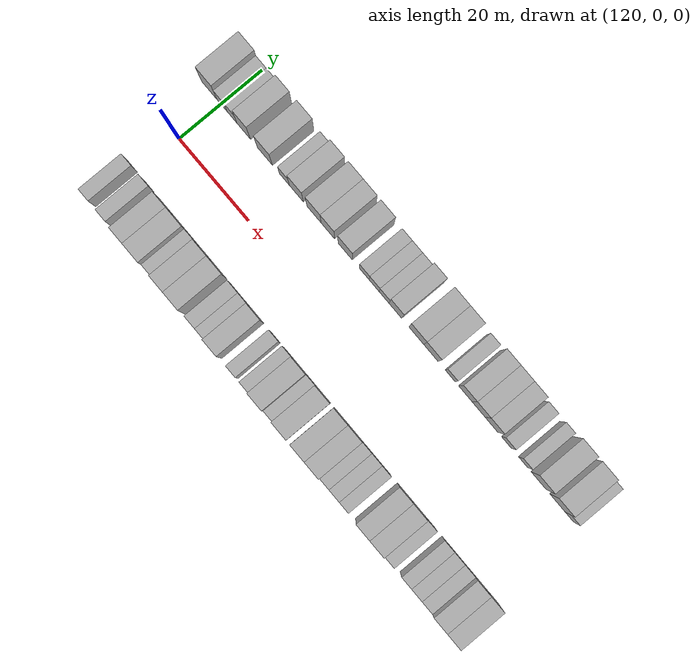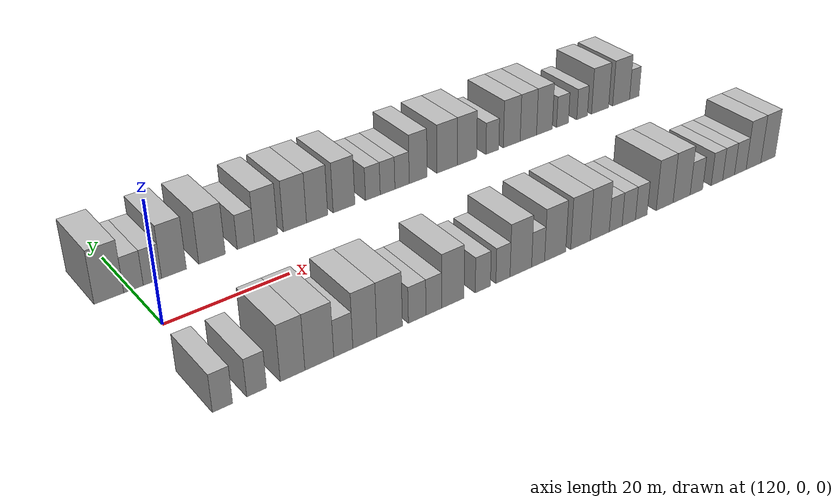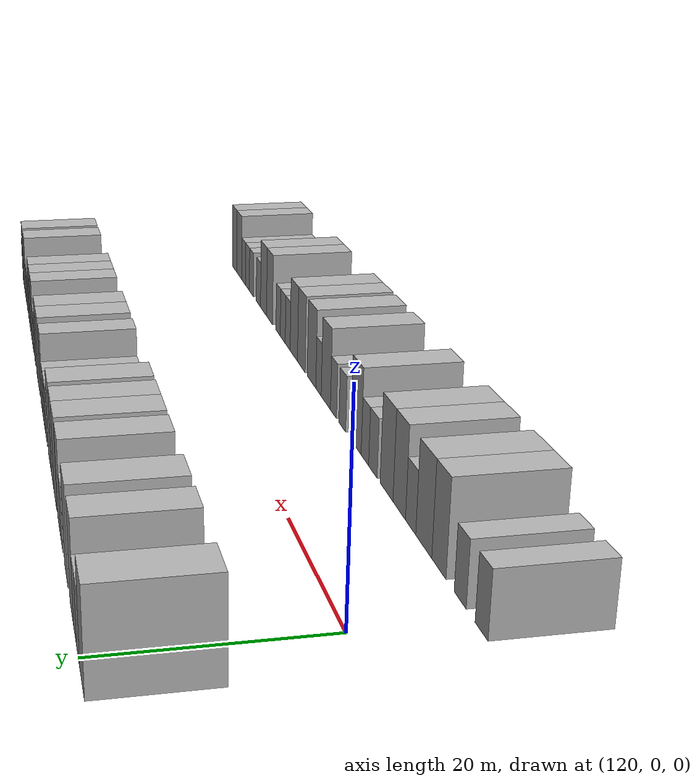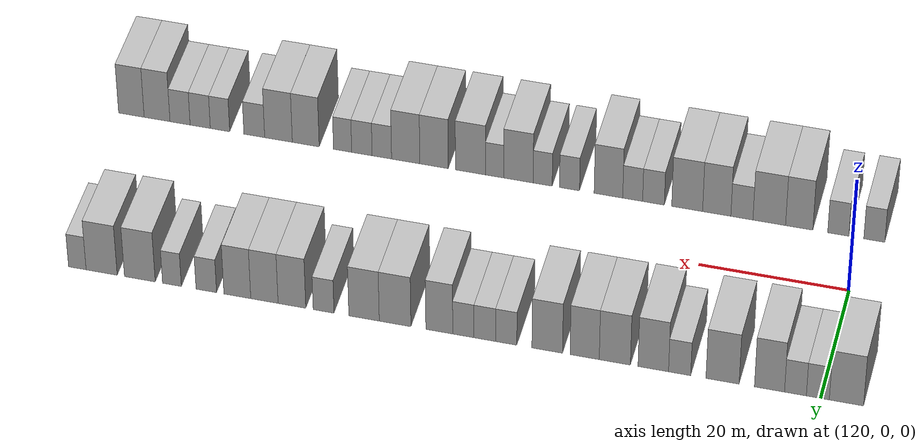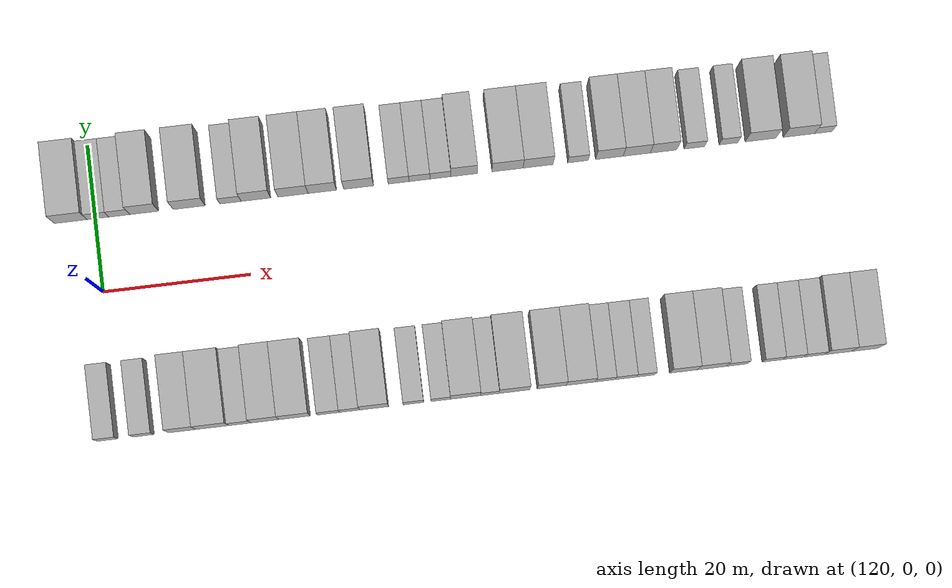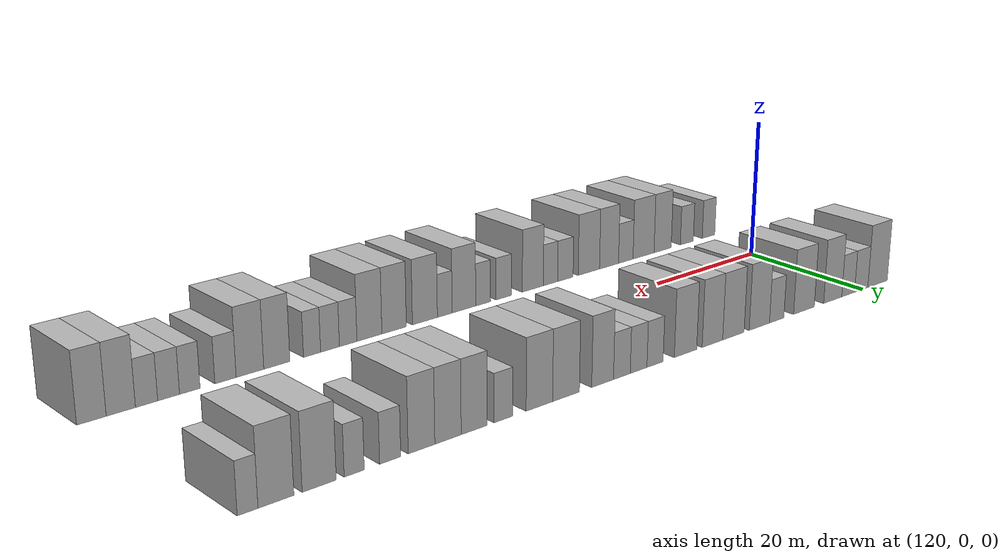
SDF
<sdf version="1.6">
 <world name="default">
  <model name="building_27">
   <static>1</static>
   <pose>116.6124 15.0000 0 0.000000 0.000000 1.570796</pose>
   <link name="link">
    <pose>0 0 4.50 0 0 0</pose>
    <collision name="collision"><geometry><box><size>10.0000 4.4511 9.0000</size></box></geometry></collision>
    <visual name="visual">
     <cast_shadows>0</cast_shadows>
     <geometry><box><size>10.0000 4.4511 9.0000</size></box></geometry>
     <material>
      <script>
       <uri>model://HANNAS_wall/materials/scripts</uri>
       <uri>model://HANNAS_wall/materials/textures</uri>
       <name>vrc/HANNAS_wall</name>
      </script>
     </material>
    </visual>
   </link>
  </model>
  <model name="building_28">
   <static>1</static>
   <pose>120.3287 15.0000 0 0.000000 0.000000 1.570796</pose>
   <link name="link">
    <pose>0 0 3.00 0 0 0</pose>
    <collision name="collision"><geometry><box><size>10.0000 2.9816 6.0000</size></box></geometry></collision>
    <visual name="visual">
     <cast_shadows>0</cast_shadows>
     <geometry><box><size>10.0000 2.9816 6.0000</size></box></geometry>
     <material>
      <script>
       <uri>model://HANNAS_wall/materials/scripts</uri>
       <uri>model://HANNAS_wall/materials/textures</uri>
       <name>vrc/HANNAS_wall</name>
      </script>
     </material>
    </visual>
   </link>
  </model>
  <model name="building_29">
   <static>1</static>
   <pose>123.2428 15.0000 0 0.000000 0.000000 1.570796</pose>
   <link name="link">
    <pose>0 0 3.00 0 0 0</pose>
    <collision name="collision"><geometry><box><size>10.0000 2.8466 6.0000</size></box></geometry></collision>
    <visual name="visual">
     <cast_shadows>0</cast_shadows>
     <geometry><box><size>10.0000 2.8466 6.0000</size></box></geometry>
     <material>
      <script>
       <uri>model://HANNAS_wall/materials/scripts</uri>
       <uri>model://HANNAS_wall/materials/textures</uri>
       <name>vrc/HANNAS_wall</name>
      </script>
     </material>
    </visual>
   </link>
  </model>
  <model name="building_30">
   <static>1</static>
   <pose>126.6300 15.0000 0 0.000000 0.000000 1.570796</pose>
   <link name="link">
    <pose>0 0 4.50 0 0 0</pose>
    <collision name="collision"><geometry><box><size>10.0000 3.9278 9.0000</size></box></geometry></collision>
    <visual name="visual">
     <cast_shadows>0</cast_shadows>
     <geometry><box><size>10.0000 3.9278 9.0000</size></box></geometry>
     <material>
      <script>
       <uri>model://HANNAS_wall/materials/scripts</uri>
       <uri>model://HANNAS_wall/materials/textures</uri>
       <name>vrc/HANNAS_wall</name>
      </script>
     </material>
    </visual>
   </link>
  </model>
  <model name="building_31">
   <static>1</static>
   <pose>132.7676 15.0000 0 0.000000 0.000000 1.570796</pose>
   <link name="link">
    <pose>0 0 4.50 0 0 0</pose>
    <collision name="collision"><geometry><box><size>10.0000 4.3474 9.0000</size></box></geometry></collision>
    <visual name="visual">
     <cast_shadows>0</cast_shadows>
     <geometry><box><size>10.0000 4.3474 9.0000</size></box></geometry>
     <material>
      <script>
       <uri>model://HANNAS_wall/materials/scripts</uri>
       <uri>model://HANNAS_wall/materials/textures</uri>
       <name>vrc/HANNAS_wall</name>
      </script>
     </material>
    </visual>
   </link>
  </model>
  <model name="building_32">
   <static>1</static>
   <pose>138.3979 15.0000 0 0.000000 0.000000 1.570796</pose>
   <link name="link">
    <pose>0 0 3.00 0 0 0</pose>
    <collision name="collision"><geometry><box><size>10.0000 2.9134 6.0000</size></box></geometry></collision>
    <visual name="visual">
     <cast_shadows>0</cast_shadows>
     <geometry><box><size>10.0000 2.9134 6.0000</size></box></geometry>
     <material>
      <script>
       <uri>model://HANNAS_wall/materials/scripts</uri>
       <uri>model://HANNAS_wall/materials/textures</uri>
       <name>vrc/HANNAS_wall</name>
      </script>
     </material>
    </visual>
   </link>
  </model>
  <model name="building_33">
   <static>1</static>
   <pose>141.8641 15.0000 0 0.000000 0.000000 1.570796</pose>
   <link name="link">
    <pose>0 0 4.50 0 0 0</pose>
    <collision name="collision"><geometry><box><size>10.0000 4.0190 9.0000</size></box></geometry></collision>
    <visual name="visual">
     <cast_shadows>0</cast_shadows>
     <geometry><box><size>10.0000 4.0190 9.0000</size></box></geometry>
     <material>
      <script>
       <uri>model://HANNAS_wall/materials/scripts</uri>
       <uri>model://HANNAS_wall/materials/textures</uri>
       <name>vrc/HANNAS_wall</name>
      </script>
     </material>
    </visual>
   </link>
  </model>
  <model name="building_34">
   <static>1</static>
   <pose>146.9313 15.0000 0 0.000000 0.000000 1.570796</pose>
   <link name="link">
    <pose>0 0 4.50 0 0 0</pose>
    <collision name="collision"><geometry><box><size>10.0000 4.1154 9.0000</size></box></geometry></collision>
    <visual name="visual">
     <cast_shadows>0</cast_shadows>
     <geometry><box><size>10.0000 4.1154 9.0000</size></box></geometry>
     <material>
      <script>
       <uri>model://HANNAS_wall/materials/scripts</uri>
       <uri>model://HANNAS_wall/materials/textures</uri>
       <name>vrc/HANNAS_wall</name>
      </script>
     </material>
    </visual>
   </link>
  </model>
  <model name="building_35">
   <static>1</static>
   <pose>150.9190 15.0000 0 0.000000 0.000000 1.570796</pose>
   <link name="link">
    <pose>0 0 4.50 0 0 0</pose>
    <collision name="collision"><geometry><box><size>10.0000 3.8599 9.0000</size></box></geometry></collision>
    <visual name="visual">
     <cast_shadows>0</cast_shadows>
     <geometry><box><size>10.0000 3.8599 9.0000</size></box></geometry>
     <material>
      <script>
       <uri>model://HANNAS_wall/materials/scripts</uri>
       <uri>model://HANNAS_wall/materials/textures</uri>
       <name>vrc/HANNAS_wall</name>
      </script>
     </material>
    </visual>
   </link>
  </model>
  <model name="building_36">
   <static>1</static>
   <pose>155.8827 15.0000 0 0.000000 0.000000 1.570796</pose>
   <link name="link">
    <pose>0 0 4.50 0 0 0</pose>
    <collision name="collision"><geometry><box><size>10.0000 4.0676 9.0000</size></box></geometry></collision>
    <visual name="visual">
     <cast_shadows>0</cast_shadows>
     <geometry><box><size>10.0000 4.0676 9.0000</size></box></geometry>
     <material>
      <script>
       <uri>model://HANNAS_wall/materials/scripts</uri>
       <uri>model://HANNAS_wall/materials/textures</uri>
       <name>vrc/HANNAS_wall</name>
      </script>
     </material>
    </visual>
   </link>
  </model>
  <model name="building_37">
   <static>1</static>
   <pose>161.3342 15.0000 0 0.000000 0.000000 1.570796</pose>
   <link name="link">
    <pose>0 0 3.00 0 0 0</pose>
    <collision name="collision"><geometry><box><size>10.0000 2.8354 6.0000</size></box></geometry></collision>
    <visual name="visual">
     <cast_shadows>0</cast_shadows>
     <geometry><box><size>10.0000 2.8354 6.0000</size></box></geometry>
     <material>
      <script>
       <uri>model://HANNAS_wall/materials/scripts</uri>
       <uri>model://HANNAS_wall/materials/textures</uri>
       <name>vrc/HANNAS_wall</name>
      </script>
     </material>
    </visual>
   </link>
  </model>
  <model name="building_38">
   <static>1</static>
   <pose>164.1872 15.0000 0 0.000000 0.000000 1.570796</pose>
   <link name="link">
    <pose>0 0 3.00 0 0 0</pose>
    <collision name="collision"><geometry><box><size>10.0000 2.8705 6.0000</size></box></geometry></collision>
    <visual name="visual">
     <cast_shadows>0</cast_shadows>
     <geometry><box><size>10.0000 2.8705 6.0000</size></box></geometry>
     <material>
      <script>
       <uri>model://HANNAS_wall/materials/scripts</uri>
       <uri>model://HANNAS_wall/materials/textures</uri>
       <name>vrc/HANNAS_wall</name>
      </script>
     </material>
    </visual>
   </link>
  </model>
  <model name="building_39">
   <static>1</static>
   <pose>167.0427 15.0000 0 0.000000 0.000000 1.570796</pose>
   <link name="link">
    <pose>0 0 3.00 0 0 0</pose>
    <collision name="collision"><geometry><box><size>10.0000 2.8405 6.0000</size></box></geometry></collision>
    <visual name="visual">
     <cast_shadows>0</cast_shadows>
     <geometry><box><size>10.0000 2.8405 6.0000</size></box></geometry>
     <material>
      <script>
       <uri>model://HANNAS_wall/materials/scripts</uri>
       <uri>model://HANNAS_wall/materials/textures</uri>
       <name>vrc/HANNAS_wall</name>
      </script>
     </material>
    </visual>
   </link>
  </model>
  <model name="building_40">
   <static>1</static>
   <pose>170.2631 15.0000 0 0.000000 0.000000 1.570796</pose>
   <link name="link">
    <pose>0 0 4.50 0 0 0</pose>
    <collision name="collision"><geometry><box><size>10.0000 3.6004 9.0000</size></box></geometry></collision>
    <visual name="visual">
     <cast_shadows>0</cast_shadows>
     <geometry><box><size>10.0000 3.6004 9.0000</size></box></geometry>
     <material>
      <script>
       <uri>model://HANNAS_wall/materials/scripts</uri>
       <uri>model://HANNAS_wall/materials/textures</uri>
       <name>vrc/HANNAS_wall</name>
      </script>
     </material>
    </visual>
   </link>
  </model>
  <model name="building_41">
   <static>1</static>
   <pose>176.1903 15.0000 0 0.000000 0.000000 1.570796</pose>
   <link name="link">
    <pose>0 0 4.50 0 0 0</pose>
    <collision name="collision"><geometry><box><size>10.0000 4.2541 9.0000</size></box></geometry></collision>
    <visual name="visual">
     <cast_shadows>0</cast_shadows>
     <geometry><box><size>10.0000 4.2541 9.0000</size></box></geometry>
     <material>
      <script>
       <uri>model://HANNAS_wall/materials/scripts</uri>
       <uri>model://HANNAS_wall/materials/textures</uri>
       <name>vrc/HANNAS_wall</name>
      </script>
     </material>
    </visual>
   </link>
  </model>
  <model name="building_42">
   <static>1</static>
   <pose>180.3640 15.0000 0 0.000000 0.000000 1.570796</pose>
   <link name="link">
    <pose>0 0 4.50 0 0 0</pose>
    <collision name="collision"><geometry><box><size>10.0000 4.0933 9.0000</size></box></geometry></collision>
    <visual name="visual">
     <cast_shadows>0</cast_shadows>
     <geometry><box><size>10.0000 4.0933 9.0000</size></box></geometry>
     <material>
      <script>
       <uri>model://HANNAS_wall/materials/scripts</uri>
       <uri>model://HANNAS_wall/materials/textures</uri>
       <name>vrc/HANNAS_wall</name>
      </script>
     </material>
    </visual>
   </link>
  </model>
  <model name="building_43">
   <static>1</static>
   <pose>185.8151 15.0000 0 0.000000 0.000000 1.570796</pose>
   <link name="link">
    <pose>0 0 3.00 0 0 0</pose>
    <collision name="collision"><geometry><box><size>10.0000 2.8088 6.0000</size></box></geometry></collision>
    <visual name="visual">
     <cast_shadows>0</cast_shadows>
     <geometry><box><size>10.0000 2.8088 6.0000</size></box></geometry>
     <material>
      <script>
       <uri>model://HANNAS_wall/materials/scripts</uri>
       <uri>model://HANNAS_wall/materials/textures</uri>
       <name>vrc/HANNAS_wall</name>
      </script>
     </material>
    </visual>
   </link>
  </model>
  <model name="building_44">
   <static>1</static>
   <pose>190.0954 15.0000 0 0.000000 0.000000 1.570796</pose>
   <link name="link">
    <pose>0 0 4.50 0 0 0</pose>
    <collision name="collision"><geometry><box><size>10.0000 3.7519 9.0000</size></box></geometry></collision>
    <visual name="visual">
     <cast_shadows>0</cast_shadows>
     <geometry><box><size>10.0000 3.7519 9.0000</size></box></geometry>
     <material>
      <script>
       <uri>model://HANNAS_wall/materials/scripts</uri>
       <uri>model://HANNAS_wall/materials/textures</uri>
       <name>vrc/HANNAS_wall</name>
      </script>
     </material>
    </visual>
   </link>
  </model>
  <model name="building_45">
   <static>1</static>
   <pose>193.8242 15.0000 0 0.000000 0.000000 1.570796</pose>
   <link name="link">
    <pose>0 0 4.50 0 0 0</pose>
    <collision name="collision"><geometry><box><size>10.0000 3.7057 9.0000</size></box></geometry></collision>
    <visual name="visual">
     <cast_shadows>0</cast_shadows>
     <geometry><box><size>10.0000 3.7057 9.0000</size></box></geometry>
     <material>
      <script>
       <uri>model://HANNAS_wall/materials/scripts</uri>
       <uri>model://HANNAS_wall/materials/textures</uri>
       <name>vrc/HANNAS_wall</name>
      </script>
     </material>
    </visual>
   </link>
  </model>
  <model name="building_46">
   <static>1</static>
   <pose>197.5007 15.0000 0 0.000000 0.000000 1.570796</pose>
   <link name="link">
    <pose>0 0 4.50 0 0 0</pose>
    <collision name="collision"><geometry><box><size>10.0000 3.6475 9.0000</size></box></geometry></collision>
    <visual name="visual">
     <cast_shadows>0</cast_shadows>
     <geometry><box><size>10.0000 3.6475 9.0000</size></box></geometry>
     <material>
      <script>
       <uri>model://HANNAS_wall/materials/scripts</uri>
       <uri>model://HANNAS_wall/materials/textures</uri>
       <name>vrc/HANNAS_wall</name>
      </script>
     </material>
    </visual>
   </link>
  </model>
  <model name="building_47">
   <static>1</static>
   <pose>201.7221 15.0000 0 0.000000 0.000000 1.570796</pose>
   <link name="link">
    <pose>0 0 3.00 0 0 0</pose>
    <collision name="collision"><geometry><box><size>10.0000 2.7953 6.0000</size></box></geometry></collision>
    <visual name="visual">
     <cast_shadows>0</cast_shadows>
     <geometry><box><size>10.0000 2.7953 6.0000</size></box></geometry>
     <material>
      <script>
       <uri>model://HANNAS_wall/materials/scripts</uri>
       <uri>model://HANNAS_wall/materials/textures</uri>
       <name>vrc/HANNAS_wall</name>
      </script>
     </material>
    </visual>
   </link>
  </model>
  <model name="building_48">
   <static>1</static>
   <pose>206.4049 15.0000 0 0.000000 0.000000 1.570796</pose>
   <link name="link">
    <pose>0 0 3.00 0 0 0</pose>
    <collision name="collision"><geometry><box><size>10.0000 2.5703 6.0000</size></box></geometry></collision>
    <visual name="visual">
     <cast_shadows>0</cast_shadows>
     <geometry><box><size>10.0000 2.5703 6.0000</size></box></geometry>
     <material>
      <script>
       <uri>model://HANNAS_wall/materials/scripts</uri>
       <uri>model://HANNAS_wall/materials/textures</uri>
       <name>vrc/HANNAS_wall</name>
      </script>
     </material>
    </visual>
   </link>
  </model>
  <model name="building_49">
   <static>1</static>
   <pose>210.7963 15.0000 0 0.000000 0.000000 1.570796</pose>
   <link name="link">
    <pose>0 0 4.50 0 0 0</pose>
    <collision name="collision"><geometry><box><size>10.0000 4.2124 9.0000</size></box></geometry></collision>
    <visual name="visual">
     <cast_shadows>0</cast_shadows>
     <geometry><box><size>10.0000 4.2124 9.0000</size></box></geometry>
     <material>
      <script>
       <uri>model://HANNAS_wall/materials/scripts</uri>
       <uri>model://HANNAS_wall/materials/textures</uri>
       <name>vrc/HANNAS_wall</name>
      </script>
     </material>
    </visual>
   </link>
  </model>
  <model name="building_50">
   <static>1</static>
   <pose>216.0364 15.0000 0 0.000000 0.000000 1.570796</pose>
   <link name="link">
    <pose>0 0 4.50 0 0 0</pose>
    <collision name="collision"><geometry><box><size>10.0000 4.2677 9.0000</size></box></geometry></collision>
    <visual name="visual">
     <cast_shadows>0</cast_shadows>
     <geometry><box><size>10.0000 4.2677 9.0000</size></box></geometry>
     <material>
      <script>
       <uri>model://HANNAS_wall/materials/scripts</uri>
       <uri>model://HANNAS_wall/materials/textures</uri>
       <name>vrc/HANNAS_wall</name>
      </script>
     </material>
    </visual>
   </link>
  </model>
  <model name="building_51">
   <static>1</static>
   <pose>219.3759 15.0000 0 0.000000 0.000000 1.570796</pose>
   <link name="link">
    <pose>0 0 3.00 0 0 0</pose>
    <collision name="collision"><geometry><box><size>10.0000 2.4113 6.0000</size></box></geometry></collision>
    <visual name="visual">
     <cast_shadows>0</cast_shadows>
     <geometry><box><size>10.0000 2.4113 6.0000</size></box></geometry>
     <material>
      <script>
       <uri>model://HANNAS_wall/materials/scripts</uri>
       <uri>model://HANNAS_wall/materials/textures</uri>
       <name>vrc/HANNAS_wall</name>
      </script>
     </material>
    </visual>
   </link>
  </model>
  <model name="building_79">
   <static>1</static>
   <pose>118.4318 -15.0000 0 0.000000 0.000000 1.570796</pose>
   <link name="link">
    <pose>0 0 3.00 0 0 0</pose>
    <collision name="collision"><geometry><box><size>10.0000 2.8278 6.0000</size></box></geometry></collision>
    <visual name="visual">
     <cast_shadows>0</cast_shadows>
     <geometry><box><size>10.0000 2.8278 6.0000</size></box></geometry>
     <material>
      <script>
       <uri>model://HANNAS_wall/materials/scripts</uri>
       <uri>model://HANNAS_wall/materials/textures</uri>
       <name>vrc/HANNAS_wall</name>
      </script>
     </material>
    </visual>
   </link>
  </model>
  <model name="building_80">
   <static>1</static>
   <pose>123.2757 -15.0000 0 0.000000 0.000000 1.570796</pose>
   <link name="link">
    <pose>0 0 3.00 0 0 0</pose>
    <collision name="collision"><geometry><box><size>10.0000 2.8600 6.0000</size></box></geometry></collision>
    <visual name="visual">
     <cast_shadows>0</cast_shadows>
     <geometry><box><size>10.0000 2.8600 6.0000</size></box></geometry>
     <material>
      <script>
       <uri>model://HANNAS_wall/materials/scripts</uri>
       <uri>model://HANNAS_wall/materials/textures</uri>
       <name>vrc/HANNAS_wall</name>
      </script>
     </material>
    </visual>
   </link>
  </model>
  <model name="building_81">
   <static>1</static>
   <pose>128.5474 -15.0000 0 0.000000 0.000000 1.570796</pose>
   <link name="link">
    <pose>0 0 4.50 0 0 0</pose>
    <collision name="collision"><geometry><box><size>10.0000 3.6834 9.0000</size></box></geometry></collision>
    <visual name="visual">
     <cast_shadows>0</cast_shadows>
     <geometry><box><size>10.0000 3.6834 9.0000</size></box></geometry>
     <material>
      <script>
       <uri>model://HANNAS_wall/materials/scripts</uri>
       <uri>model://HANNAS_wall/materials/textures</uri>
       <name>vrc/HANNAS_wall</name>
      </script>
     </material>
    </visual>
   </link>
  </model>
  <model name="building_82">
   <static>1</static>
   <pose>132.5983 -15.0000 0 0.000000 0.000000 1.570796</pose>
   <link name="link">
    <pose>0 0 4.50 0 0 0</pose>
    <collision name="collision"><geometry><box><size>10.0000 4.4184 9.0000</size></box></geometry></collision>
    <visual name="visual">
     <cast_shadows>0</cast_shadows>
     <geometry><box><size>10.0000 4.4184 9.0000</size></box></geometry>
     <material>
      <script>
       <uri>model://HANNAS_wall/materials/scripts</uri>
       <uri>model://HANNAS_wall/materials/textures</uri>
       <name>vrc/HANNAS_wall</name>
      </script>
     </material>
    </visual>
   </link>
  </model>
  <model name="building_83">
   <static>1</static>
   <pose>136.3037 -15.0000 0 0.000000 0.000000 1.570796</pose>
   <link name="link">
    <pose>0 0 3.00 0 0 0</pose>
    <collision name="collision"><geometry><box><size>10.0000 2.9924 6.0000</size></box></geometry></collision>
    <visual name="visual">
     <cast_shadows>0</cast_shadows>
     <geometry><box><size>10.0000 2.9924 6.0000</size></box></geometry>
     <material>
      <script>
       <uri>model://HANNAS_wall/materials/scripts</uri>
       <uri>model://HANNAS_wall/materials/textures</uri>
       <name>vrc/HANNAS_wall</name>
      </script>
     </material>
    </visual>
   </link>
  </model>
  <model name="building_84">
   <static>1</static>
   <pose>139.7225 -15.0000 0 0.000000 0.000000 1.570796</pose>
   <link name="link">
    <pose>0 0 4.50 0 0 0</pose>
    <collision name="collision"><geometry><box><size>10.0000 3.8451 9.0000</size></box></geometry></collision>
    <visual name="visual">
     <cast_shadows>0</cast_shadows>
     <geometry><box><size>10.0000 3.8451 9.0000</size></box></geometry>
     <material>
      <script>
       <uri>model://HANNAS_wall/materials/scripts</uri>
       <uri>model://HANNAS_wall/materials/textures</uri>
       <name>vrc/HANNAS_wall</name>
      </script>
     </material>
    </visual>
   </link>
  </model>
  <model name="building_85">
   <static>1</static>
   <pose>143.7495 -15.0000 0 0.000000 0.000000 1.570796</pose>
   <link name="link">
    <pose>0 0 4.50 0 0 0</pose>
    <collision name="collision"><geometry><box><size>10.0000 4.2091 9.0000</size></box></geometry></collision>
    <visual name="visual">
     <cast_shadows>0</cast_shadows>
     <geometry><box><size>10.0000 4.2091 9.0000</size></box></geometry>
     <material>
      <script>
       <uri>model://HANNAS_wall/materials/scripts</uri>
       <uri>model://HANNAS_wall/materials/textures</uri>
       <name>vrc/HANNAS_wall</name>
      </script>
     </material>
    </visual>
   </link>
  </model>
  <model name="building_86">
   <static>1</static>
   <pose>148.3384 -15.0000 0 0.000000 0.000000 1.570796</pose>
   <link name="link">
    <pose>0 0 3.00 0 0 0</pose>
    <collision name="collision"><geometry><box><size>10.0000 2.9688 6.0000</size></box></geometry></collision>
    <visual name="visual">
     <cast_shadows>0</cast_shadows>
     <geometry><box><size>10.0000 2.9688 6.0000</size></box></geometry>
     <material>
      <script>
       <uri>model://HANNAS_wall/materials/scripts</uri>
       <uri>model://HANNAS_wall/materials/textures</uri>
       <name>vrc/HANNAS_wall</name>
      </script>
     </material>
    </visual>
   </link>
  </model>
  <model name="building_87">
   <static>1</static>
   <pose>151.1822 -15.0000 0 0.000000 0.000000 1.570796</pose>
   <link name="link">
    <pose>0 0 3.00 0 0 0</pose>
    <collision name="collision"><geometry><box><size>10.0000 2.7187 6.0000</size></box></geometry></collision>
    <visual name="visual">
     <cast_shadows>0</cast_shadows>
     <geometry><box><size>10.0000 2.7187 6.0000</size></box></geometry>
     <material>
      <script>
       <uri>model://HANNAS_wall/materials/scripts</uri>
       <uri>model://HANNAS_wall/materials/textures</uri>
       <name>vrc/HANNAS_wall</name>
      </script>
     </material>
    </visual>
   </link>
  </model>
  <model name="building_88">
   <static>1</static>
   <pose>154.5016 -15.0000 0 0.000000 0.000000 1.570796</pose>
   <link name="link">
    <pose>0 0 4.50 0 0 0</pose>
    <collision name="collision"><geometry><box><size>10.0000 3.9201 9.0000</size></box></geometry></collision>
    <visual name="visual">
     <cast_shadows>0</cast_shadows>
     <geometry><box><size>10.0000 3.9201 9.0000</size></box></geometry>
     <material>
      <script>
       <uri>model://HANNAS_wall/materials/scripts</uri>
       <uri>model://HANNAS_wall/materials/textures</uri>
       <name>vrc/HANNAS_wall</name>
      </script>
     </material>
    </visual>
   </link>
  </model>
  <model name="building_89">
   <static>1</static>
   <pose>159.8410 -15.0000 0 0.000000 0.000000 1.570796</pose>
   <link name="link">
    <pose>0 0 3.00 0 0 0</pose>
    <collision name="collision"><geometry><box><size>10.0000 2.7586 6.0000</size></box></geometry></collision>
    <visual name="visual">
     <cast_shadows>0</cast_shadows>
     <geometry><box><size>10.0000 2.7586 6.0000</size></box></geometry>
     <material>
      <script>
       <uri>model://HANNAS_wall/materials/scripts</uri>
       <uri>model://HANNAS_wall/materials/textures</uri>
       <name>vrc/HANNAS_wall</name>
      </script>
     </material>
    </visual>
   </link>
  </model>
  <model name="building_90">
   <static>1</static>
   <pose>163.5299 -15.0000 0 0.000000 0.000000 1.570796</pose>
   <link name="link">
    <pose>0 0 3.00 0 0 0</pose>
    <collision name="collision"><geometry><box><size>10.0000 2.6192 6.0000</size></box></geometry></collision>
    <visual name="visual">
     <cast_shadows>0</cast_shadows>
     <geometry><box><size>10.0000 2.6192 6.0000</size></box></geometry>
     <material>
      <script>
       <uri>model://HANNAS_wall/materials/scripts</uri>
       <uri>model://HANNAS_wall/materials/textures</uri>
       <name>vrc/HANNAS_wall</name>
      </script>
     </material>
    </visual>
   </link>
  </model>
  <model name="building_91">
   <static>1</static>
   <pose>166.8804 -15.0000 0 0.000000 0.000000 1.570796</pose>
   <link name="link">
    <pose>0 0 4.50 0 0 0</pose>
    <collision name="collision"><geometry><box><size>10.0000 4.0819 9.0000</size></box></geometry></collision>
    <visual name="visual">
     <cast_shadows>0</cast_shadows>
     <geometry><box><size>10.0000 4.0819 9.0000</size></box></geometry>
     <material>
      <script>
       <uri>model://HANNAS_wall/materials/scripts</uri>
       <uri>model://HANNAS_wall/materials/textures</uri>
       <name>vrc/HANNAS_wall</name>
      </script>
     </material>
    </visual>
   </link>
  </model>
  <model name="building_92">
   <static>1</static>
   <pose>170.1736 -15.0000 0 0.000000 0.000000 1.570796</pose>
   <link name="link">
    <pose>0 0 3.00 0 0 0</pose>
    <collision name="collision"><geometry><box><size>10.0000 2.5044 6.0000</size></box></geometry></collision>
    <visual name="visual">
     <cast_shadows>0</cast_shadows>
     <geometry><box><size>10.0000 2.5044 6.0000</size></box></geometry>
     <material>
      <script>
       <uri>model://HANNAS_wall/materials/scripts</uri>
       <uri>model://HANNAS_wall/materials/textures</uri>
       <name>vrc/HANNAS_wall</name>
      </script>
     </material>
    </visual>
   </link>
  </model>
  <model name="building_93">
   <static>1</static>
   <pose>173.5025 -15.0000 0 0.000000 0.000000 1.570796</pose>
   <link name="link">
    <pose>0 0 4.50 0 0 0</pose>
    <collision name="collision"><geometry><box><size>10.0000 4.1534 9.0000</size></box></geometry></collision>
    <visual name="visual">
     <cast_shadows>0</cast_shadows>
     <geometry><box><size>10.0000 4.1534 9.0000</size></box></geometry>
     <material>
      <script>
       <uri>model://HANNAS_wall/materials/scripts</uri>
       <uri>model://HANNAS_wall/materials/textures</uri>
       <name>vrc/HANNAS_wall</name>
      </script>
     </material>
    </visual>
   </link>
  </model>
  <model name="building_94">
   <static>1</static>
   <pose>178.5522 -15.0000 0 0.000000 0.000000 1.570796</pose>
   <link name="link">
    <pose>0 0 4.50 0 0 0</pose>
    <collision name="collision"><geometry><box><size>10.0000 3.9461 9.0000</size></box></geometry></collision>
    <visual name="visual">
     <cast_shadows>0</cast_shadows>
     <geometry><box><size>10.0000 3.9461 9.0000</size></box></geometry>
     <material>
      <script>
       <uri>model://HANNAS_wall/materials/scripts</uri>
       <uri>model://HANNAS_wall/materials/textures</uri>
       <name>vrc/HANNAS_wall</name>
      </script>
     </material>
    </visual>
   </link>
  </model>
  <model name="building_95">
   <static>1</static>
   <pose>182.4926 -15.0000 0 0.000000 0.000000 1.570796</pose>
   <link name="link">
    <pose>0 0 4.50 0 0 0</pose>
    <collision name="collision"><geometry><box><size>10.0000 3.9345 9.0000</size></box></geometry></collision>
    <visual name="visual">
     <cast_shadows>0</cast_shadows>
     <geometry><box><size>10.0000 3.9345 9.0000</size></box></geometry>
     <material>
      <script>
       <uri>model://HANNAS_wall/materials/scripts</uri>
       <uri>model://HANNAS_wall/materials/textures</uri>
       <name>vrc/HANNAS_wall</name>
      </script>
     </material>
    </visual>
   </link>
  </model>
  <model name="building_96">
   <static>1</static>
   <pose>185.8137 -15.0000 0 0.000000 0.000000 1.570796</pose>
   <link name="link">
    <pose>0 0 3.00 0 0 0</pose>
    <collision name="collision"><geometry><box><size>10.0000 2.7078 6.0000</size></box></geometry></collision>
    <visual name="visual">
     <cast_shadows>0</cast_shadows>
     <geometry><box><size>10.0000 2.7078 6.0000</size></box></geometry>
     <material>
      <script>
       <uri>model://HANNAS_wall/materials/scripts</uri>
       <uri>model://HANNAS_wall/materials/textures</uri>
       <name>vrc/HANNAS_wall</name>
      </script>
     </material>
    </visual>
   </link>
  </model>
  <model name="building_97">
   <static>1</static>
   <pose>188.5949 -15.0000 0 0.000000 0.000000 1.570796</pose>
   <link name="link">
    <pose>0 0 3.00 0 0 0</pose>
    <collision name="collision"><geometry><box><size>10.0000 2.8546 6.0000</size></box></geometry></collision>
    <visual name="visual">
     <cast_shadows>0</cast_shadows>
     <geometry><box><size>10.0000 2.8546 6.0000</size></box></geometry>
     <material>
      <script>
       <uri>model://HANNAS_wall/materials/scripts</uri>
       <uri>model://HANNAS_wall/materials/textures</uri>
       <name>vrc/HANNAS_wall</name>
      </script>
     </material>
    </visual>
   </link>
  </model>
  <model name="building_98">
   <static>1</static>
   <pose>191.2933 -15.0000 0 0.000000 0.000000 1.570796</pose>
   <link name="link">
    <pose>0 0 3.00 0 0 0</pose>
    <collision name="collision"><geometry><box><size>10.0000 2.5422 6.0000</size></box></geometry></collision>
    <visual name="visual">
     <cast_shadows>0</cast_shadows>
     <geometry><box><size>10.0000 2.5422 6.0000</size></box></geometry>
     <material>
      <script>
       <uri>model://HANNAS_wall/materials/scripts</uri>
       <uri>model://HANNAS_wall/materials/textures</uri>
       <name>vrc/HANNAS_wall</name>
      </script>
     </material>
    </visual>
   </link>
  </model>
  <model name="building_99">
   <static>1</static>
   <pose>196.4479 -15.0000 0 0.000000 0.000000 1.570796</pose>
   <link name="link">
    <pose>0 0 4.50 0 0 0</pose>
    <collision name="collision"><geometry><box><size>10.0000 3.7670 9.0000</size></box></geometry></collision>
    <visual name="visual">
     <cast_shadows>0</cast_shadows>
     <geometry><box><size>10.0000 3.7670 9.0000</size></box></geometry>
     <material>
      <script>
       <uri>model://HANNAS_wall/materials/scripts</uri>
       <uri>model://HANNAS_wall/materials/textures</uri>
       <name>vrc/HANNAS_wall</name>
      </script>
     </material>
    </visual>
   </link>
  </model>
  <model name="building_100">
   <static>1</static>
   <pose>200.2764 -15.0000 0 0.000000 0.000000 1.570796</pose>
   <link name="link">
    <pose>0 0 4.50 0 0 0</pose>
    <collision name="collision"><geometry><box><size>10.0000 3.8899 9.0000</size></box></geometry></collision>
    <visual name="visual">
     <cast_shadows>0</cast_shadows>
     <geometry><box><size>10.0000 3.8899 9.0000</size></box></geometry>
     <material>
      <script>
       <uri>model://HANNAS_wall/materials/scripts</uri>
       <uri>model://HANNAS_wall/materials/textures</uri>
       <name>vrc/HANNAS_wall</name>
      </script>
     </material>
    </visual>
   </link>
  </model>
  <model name="building_101">
   <static>1</static>
   <pose>203.6827 -15.0000 0 0.000000 0.000000 1.570796</pose>
   <link name="link">
    <pose>0 0 3.00 0 0 0</pose>
    <collision name="collision"><geometry><box><size>10.0000 2.9228 6.0000</size></box></geometry></collision>
    <visual name="visual">
     <cast_shadows>0</cast_shadows>
     <geometry><box><size>10.0000 2.9228 6.0000</size></box></geometry>
     <material>
      <script>
       <uri>model://HANNAS_wall/materials/scripts</uri>
       <uri>model://HANNAS_wall/materials/textures</uri>
       <name>vrc/HANNAS_wall</name>
      </script>
     </material>
    </visual>
   </link>
  </model>
  <model name="building_102">
   <static>1</static>
   <pose>208.5144 -15.0000 0 0.000000 0.000000 1.570796</pose>
   <link name="link">
    <pose>0 0 3.00 0 0 0</pose>
    <collision name="collision"><geometry><box><size>10.0000 2.7405 6.0000</size></box></geometry></collision>
    <visual name="visual">
     <cast_shadows>0</cast_shadows>
     <geometry><box><size>10.0000 2.7405 6.0000</size></box></geometry>
     <material>
      <script>
       <uri>model://HANNAS_wall/materials/scripts</uri>
       <uri>model://HANNAS_wall/materials/textures</uri>
       <name>vrc/HANNAS_wall</name>
      </script>
     </material>
    </visual>
   </link>
  </model>
  <model name="building_103">
   <static>1</static>
   <pose>211.3117 -15.0000 0 0.000000 0.000000 1.570796</pose>
   <link name="link">
    <pose>0 0 3.00 0 0 0</pose>
    <collision name="collision"><geometry><box><size>10.0000 2.8541 6.0000</size></box></geometry></collision>
    <visual name="visual">
     <cast_shadows>0</cast_shadows>
     <geometry><box><size>10.0000 2.8541 6.0000</size></box></geometry>
     <material>
      <script>
       <uri>model://HANNAS_wall/materials/scripts</uri>
       <uri>model://HANNAS_wall/materials/textures</uri>
       <name>vrc/HANNAS_wall</name>
      </script>
     </material>
    </visual>
   </link>
  </model>
  <model name="building_104">
   <static>1</static>
   <pose>214.1631 -15.0000 0 0.000000 0.000000 1.570796</pose>
   <link name="link">
    <pose>0 0 3.00 0 0 0</pose>
    <collision name="collision"><geometry><box><size>10.0000 2.8487 6.0000</size></box></geometry></collision>
    <visual name="visual">
     <cast_shadows>0</cast_shadows>
     <geometry><box><size>10.0000 2.8487 6.0000</size></box></geometry>
     <material>
      <script>
       <uri>model://HANNAS_wall/materials/scripts</uri>
       <uri>model://HANNAS_wall/materials/textures</uri>
       <name>vrc/HANNAS_wall</name>
      </script>
     </material>
    </visual>
   </link>
  </model>
  <model name="building_105">
   <static>1</static>
   <pose>217.4192 -15.0000 0 0.000000 0.000000 1.570796</pose>
   <link name="link">
    <pose>0 0 4.50 0 0 0</pose>
    <collision name="collision"><geometry><box><size>10.0000 3.6635 9.0000</size></box></geometry></collision>
    <visual name="visual">
     <cast_shadows>0</cast_shadows>
     <geometry><box><size>10.0000 3.6635 9.0000</size></box></geometry>
     <material>
      <script>
       <uri>model://HANNAS_wall/materials/scripts</uri>
       <uri>model://HANNAS_wall/materials/textures</uri>
       <name>vrc/HANNAS_wall</name>
      </script>
     </material>
    </visual>
   </link>
  </model>
  <model name="building_106">
   <static>1</static>
   <pose>221.0625 -15.0000 0 0.000000 0.000000 1.570796</pose>
   <link name="link">
    <pose>0 0 4.50 0 0 0</pose>
    <collision name="collision"><geometry><box><size>10.0000 3.6232 9.0000</size></box></geometry></collision>
    <visual name="visual">
     <cast_shadows>0</cast_shadows>
     <geometry><box><size>10.0000 3.6232 9.0000</size></box></geometry>
     <material>
      <script>
       <uri>model://HANNAS_wall/materials/scripts</uri>
       <uri>model://HANNAS_wall/materials/textures</uri>
       <name>vrc/HANNAS_wall</name>
      </script>
     </material>
    </visual>
   </link>
  </model>
 </world>
</sdf>
